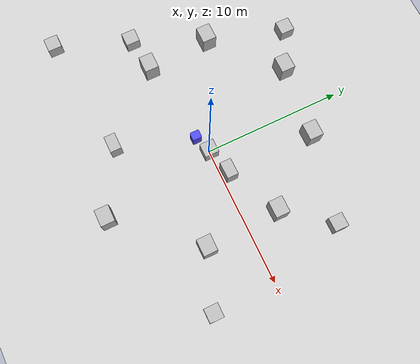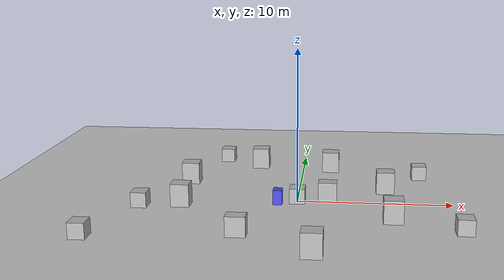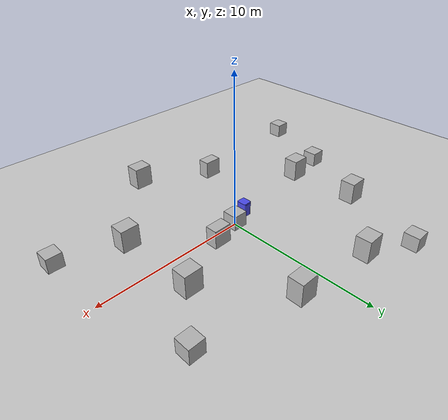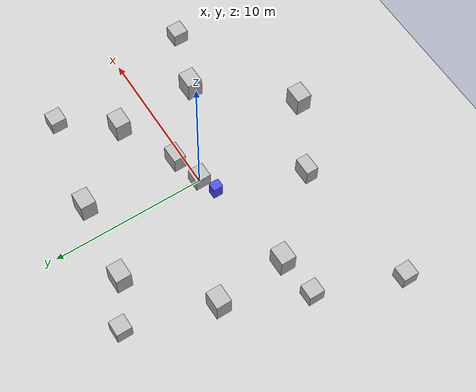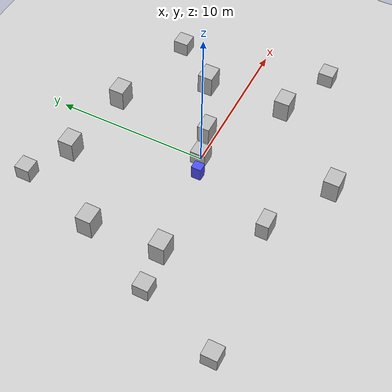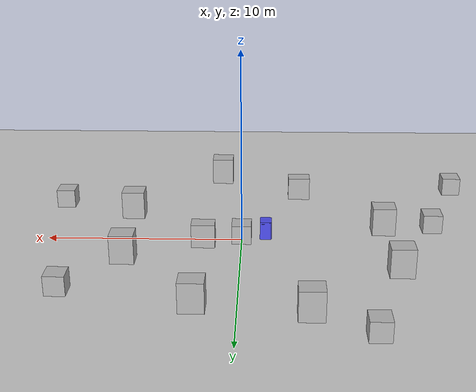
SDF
<sdf version="1.7">
 <world name="default">
  <light name="sun" type="directional">
   <pose>0 0 10 0 -0 0</pose>
   <diffuse>0.8 0.8 0.8 1</diffuse>
   <specular>0.2 0.2 0.2 1</specular>
   <attenuation>
    <range>1000</range>
    <constant>0.9</constant>
    <linear>0.01</linear>
    <quadratic>0.001</quadratic>
   </attenuation>
   <direction>-0.5 0.1 -0.9</direction>
   <spot><inner_angle>0</inner_angle><outer_angle>0</outer_angle><falloff>0</falloff></spot>
  </light>
  <model name="ground_plane">
   <static>1</static>
   <link name="link">
    <collision name="collision">
     <geometry><plane><normal>0 0 1</normal><size>100 100</size></plane></geometry>
     <surface><friction><ode><mu>100</mu><mu2>50</mu2></ode></friction></surface>
    </collision>
    <visual name="visual">
     <cast_shadows>0</cast_shadows>
     <geometry><plane><normal>0 0 1</normal><size>100 100</size></plane></geometry>
     <material>
      <script><uri>file://media/materials/scripts/gazebo.material</uri><name>Gazebo/Grey</name></script>
     </material>
    </visual>
    <kinematic>1</kinematic>
   </link>
  </model>
  <gravity>0 0 -9.8</gravity>
  <magnetic_field>6e-06 2.3e-05 -4.2e-05</magnetic_field>
  <atmosphere type="adiabatic"/>
  <physics type="ode">
   <max_step_size>0.001</max_step_size>
   <real_time_factor>1</real_time_factor>
   <real_time_update_rate>1000</real_time_update_rate>
  </physics>
  <scene><ambient>0.4 0.4 0.4 1</ambient><background>0.7 0.7 0.7 1</background><shadows>1</shadows></scene>
  <spherical_coordinates>
   <surface_model>EARTH_WGS84</surface_model>
   <latitude_deg>0</latitude_deg>
   <longitude_deg>0</longitude_deg>
   <elevation>0</elevation>
   <heading_deg>0</heading_deg>
  </spherical_coordinates>
  <model name="Big box">
   <pose>1.99012 6.88778 0.7495 -0.001246 2e-06 -0.006343</pose>
   <static>0</static>
   <link name="link">
    <inertial>
     <mass>40</mass>
     <inertia><ixx>1</ixx><ixy>0</ixy><ixz>0</ixz><iyy>1</iyy><iyz>0</iyz><izz>1</izz></inertia>
    </inertial>
    <collision name="collision">
     <geometry><box><size>1.2 0.8 1.5</size></box></geometry>
     <surface><contact><ode><max_vel>0.1</max_vel><min_depth>0.001</min_depth></ode></contact></surface>
    </collision>
    <visual name="visual"><geometry><mesh><uri>model://big_box/meshes/big_box.dae</uri></mesh></geometry></visual>
    <kinematic>1</kinematic>
   </link>
  </model>
  <model name="blue_bin_cuboid">
   <link name="link_0">
    <visual name="visual">
     <geometry><mesh><uri>model://blue_bin_cuboid/meshes/blue_bin.stl</uri><scale>1 1 1</scale></mesh></geometry>
     <material>
      <lighting>1</lighting>
      <ambient>0.074 0.074 0.937 1</ambient>
      <diffuse>0.3 0.3 0.937 1</diffuse>
      <specular>0.01 0.01 0.01 1</specular>
      <emissive>0.01 0.01 0.01 1</emissive>
      <shader type="vertex"><normal_map>__default__</normal_map></shader>
     </material>
    </visual>
    <collision name="collision">
     <geometry><mesh><uri>model://blue_bin_cuboid/meshes/blue_bin.stl</uri><scale>1 1 1</scale></mesh></geometry>
    </collision>
    <kinematic>1</kinematic>
   </link>
   <static>1</static>
   <pose>-1.54201 -0.759663 0 0 -0 0</pose>
  </model>
  <model name="box">
   <pose>8.3 5.5 0.5 0 -0 0</pose>
   <link name="link">
    <kinematic>1</kinematic>
    <collision name="collision">
     <geometry><box><size>1 1 1</size></box></geometry>
     <surface><friction><ode><mu>0</mu><mu2>0</mu2></ode></friction></surface>
    </collision>
    <visual name="visual"><geometry><box><size>1 1 1</size></box></geometry></visual>
    <self_collide>1</self_collide>
    <inertial>
     <pose>0 2 0 0 -0 0</pose>
     <inertia><ixx>1</ixx><ixy>0</ixy><ixz>0</ixz><iyy>1</iyy><iyz>0</iyz><izz>1</izz></inertia>
     <mass>1</mass>
    </inertial>
   </link>
   <plugin name="random" filename="libRandomVelocityPlugin.so">
    <link>link</link>
    <initial_velocity>0.5 0 0</initial_velocity>
    <velocity_factor>0.6</velocity_factor>
    <update_period>5</update_period>
    <min_z>0</min_z>
    <max_z>0</max_z>
    <min_y>0</min_y>
    <max_y>0</max_y>
    <min_x>-0.2</min_x>
    <max_x>-0.4</max_x>
   </plugin>
  </model>
  <model name="box2">
   <pose>-10 -1.5 0.5 0 -0 0</pose>
   <link name="link">
    <kinematic>1</kinematic>
    <collision name="collision">
     <geometry><box><size>1 1 1</size></box></geometry>
     <surface><friction><ode><mu>0</mu><mu2>0</mu2></ode></friction></surface>
    </collision>
    <visual name="visual"><geometry><box><size>1 1 1</size></box></geometry></visual>
    <self_collide>1</self_collide>
    <inertial>
     <pose>0 2 0 0 -0 0</pose>
     <inertia><ixx>1</ixx><ixy>0</ixy><ixz>0</ixz><iyy>1</iyy><iyz>0</iyz><izz>1</izz></inertia>
     <mass>1</mass>
    </inertial>
   </link>
   <plugin name="random" filename="libRandomVelocityPlugin.so">
    <link>link</link>
    <initial_velocity>0.5 0 0</initial_velocity>
    <velocity_factor>0.6</velocity_factor>
    <update_period>5</update_period>
    <min_z>0</min_z>
    <max_z>0</max_z>
    <min_y>0</min_y>
    <max_y>0</max_y>
    <min_x>0.2</min_x>
    <max_x>0.4</max_x>
   </plugin>
  </model>
  <model name="box3">
   <pose>10 -4.5 0.5 0 -0 0</pose>
   <link name="link">
    <kinematic>1</kinematic>
    <collision name="collision">
     <geometry><box><size>1 1 1</size></box></geometry>
     <surface><friction><ode><mu>0</mu><mu2>0</mu2></ode></friction></surface>
    </collision>
    <visual name="visual"><geometry><box><size>1 1 1</size></box></geometry></visual>
    <self_collide>1</self_collide>
    <inertial>
     <pose>0 2 0 0 -0 0</pose>
     <inertia><ixx>1</ixx><ixy>0</ixy><ixz>0</ixz><iyy>1</iyy><iyz>0</iyz><izz>1</izz></inertia>
     <mass>1</mass>
    </inertial>
   </link>
   <plugin name="random" filename="libRandomVelocityPlugin.so">
    <link>link</link>
    <initial_velocity>0.5 0 0</initial_velocity>
    <velocity_factor>0.6</velocity_factor>
    <update_period>5</update_period>
    <min_z>0</min_z>
    <max_z>0</max_z>
    <min_y>0</min_y>
    <max_y>0</max_y>
    <min_x>-0.2</min_x>
    <max_x>-0.4</max_x>
   </plugin>
  </model>
  <model name="box4">
   <pose>-12 -6.75 0.5 0 -0 0</pose>
   <link name="link">
    <kinematic>1</kinematic>
    <collision name="collision">
     <geometry><box><size>1 1 1</size></box></geometry>
     <surface><friction><ode><mu>0</mu><mu2>0</mu2></ode></friction></surface>
    </collision>
    <visual name="visual"><geometry><box><size>1 1 1</size></box></geometry></visual>
    <self_collide>1</self_collide>
    <inertial>
     <pose>0 2 0 0 -0 0</pose>
     <inertia><ixx>1</ixx><ixy>0</ixy><ixz>0</ixz><iyy>1</iyy><iyz>0</iyz><izz>1</izz></inertia>
     <mass>1</mass>
    </inertial>
   </link>
   <plugin name="random" filename="libRandomVelocityPlugin.so">
    <link>link</link>
    <initial_velocity>0.5 0 0</initial_velocity>
    <velocity_factor>0.6</velocity_factor>
    <update_period>5</update_period>
    <min_z>0</min_z>
    <max_z>0</max_z>
    <min_y>0</min_y>
    <max_y>0</max_y>
    <min_x>0.2</min_x>
    <max_x>0.3</max_x>
   </plugin>
  </model>
  <model name="box5">
   <pose>-6 9.0 0.5 0 -0 0</pose>
   <link name="link">
    <kinematic>1</kinematic>
    <collision name="collision">
     <geometry><box><size>1 1 1</size></box></geometry>
     <surface><friction><ode><mu>0</mu><mu2>0</mu2></ode></friction></surface>
    </collision>
    <visual name="visual"><geometry><box><size>1 1 1</size></box></geometry></visual>
    <self_collide>1</self_collide>
    <inertial>
     <pose>0 2 0 0 -0 0</pose>
     <inertia><ixx>1</ixx><ixy>0</ixy><ixz>0</ixz><iyy>1</iyy><iyz>0</iyz><izz>1</izz></inertia>
     <mass>1</mass>
    </inertial>
   </link>
   <plugin name="random" filename="libRandomVelocityPlugin.so">
    <link>link</link>
    <initial_velocity>0.5 0 0</initial_velocity>
    <velocity_factor>0.6</velocity_factor>
    <update_period>5</update_period>
    <min_z>0</min_z>
    <max_z>0</max_z>
    <min_y>-0.2</min_y>
    <max_y>-0.4</max_y>
    <min_x>0</min_x>
    <max_x>0</max_x>
   </plugin>
  </model>
  <model name="box6">
   <pose>0 0 0.5 0 -0 0</pose>
   <link name="link">
    <kinematic>1</kinematic>
    <collision name="collision">
     <geometry><box><size>1 1 1</size></box></geometry>
     <surface><friction><ode><mu>0</mu><mu2>0</mu2></ode></friction></surface>
    </collision>
    <visual name="visual"><geometry><box><size>1 1 1</size></box></geometry></visual>
    <self_collide>1</self_collide>
    <inertial>
     <pose>0 2 0 0 -0 0</pose>
     <inertia><ixx>1</ixx><ixy>0</ixy><ixz>0</ixz><iyy>1</iyy><iyz>0</iyz><izz>1</izz></inertia>
     <mass>1</mass>
    </inertial>
   </link>
   <plugin name="random" filename="libRandomVelocityPlugin.so">
    <link>link</link>
    <initial_velocity>0.5 0 0</initial_velocity>
    <velocity_factor>0.6</velocity_factor>
    <update_period>5</update_period>
    <min_z>0</min_z>
    <max_z>0</max_z>
    <min_y>0.2</min_y>
    <max_y>0.5</max_y>
    <min_x>0</min_x>
    <max_x>0</max_x>
   </plugin>
  </model>
  <model name="Big box_0">
   <pose>-7.40687 -1.17355 0.749499 0 -0.000832 -2e-06</pose>
   <static>0</static>
   <link name="link">
    <inertial>
     <mass>40</mass>
     <inertia><ixx>1</ixx><ixy>0</ixy><ixz>0</ixz><iyy>1</iyy><iyz>0</iyz><izz>1</izz></inertia>
    </inertial>
    <collision name="collision">
     <geometry><box><size>1.2 0.8 1.5</size></box></geometry>
     <surface><contact><ode><max_vel>0.1</max_vel><min_depth>0.001</min_depth></ode></contact></surface>
    </collision>
    <visual name="visual"><geometry><mesh><uri>model://big_box/meshes/big_box.dae</uri></mesh></geometry></visual>
    <kinematic>1</kinematic>
   </link>
  </model>
  <model name="Big box 4_0">
   <pose>-3.12253 -5.82703 0.624495 0 0.000826 1e-06</pose>
   <static>0</static>
   <link name="link">
    <inertial>
     <mass>40</mass>
     <inertia><ixx>1</ixx><ixy>0</ixy><ixz>0</ixz><iyy>1</iyy><iyz>0</iyz><izz>1</izz></inertia>
    </inertial>
    <collision name="collision">
     <geometry><box><size>1.2 0.8 1.25</size></box></geometry>
     <surface><contact><ode><max_vel>0.1</max_vel><min_depth>0.001</min_depth></ode></contact></surface>
    </collision>
    <visual name="visual">
     <geometry><mesh><uri>model://big_box4/meshes/big_box.dae</uri></mesh></geometry>
    </visual>
    <kinematic>1</kinematic>
   </link>
  </model>
  <model name="Big box_2">
   <pose>-3.25527 7.48275 0.7495 -0 -0.000834 -1e-06</pose>
   <static>0</static>
   <link name="link">
    <inertial>
     <mass>40</mass>
     <inertia><ixx>1</ixx><ixy>0</ixy><ixz>0</ixz><iyy>1</iyy><iyz>0</iyz><izz>1</izz></inertia>
    </inertial>
    <collision name="collision">
     <geometry><box><size>1.2 0.8 1.5</size></box></geometry>
     <surface><contact><ode><max_vel>0.1</max_vel><min_depth>0.001</min_depth></ode></contact></surface>
    </collision>
    <visual name="visual"><geometry><mesh><uri>model://big_box/meshes/big_box.dae</uri></mesh></geometry></visual>
    <kinematic>1</kinematic>
   </link>
  </model>
  <model name="Big box_3">
   <pose>5.98473 -3.05307 0.749497 0 -0.00083 0</pose>
   <static>0</static>
   <link name="link">
    <inertial>
     <mass>40</mass>
     <inertia><ixx>1</ixx><ixy>0</ixy><ixz>0</ixz><iyy>1</iyy><iyz>0</iyz><izz>1</izz></inertia>
    </inertial>
    <collision name="collision">
     <geometry><box><size>1.2 0.8 1.5</size></box></geometry>
     <surface><contact><ode><max_vel>0.1</max_vel><min_depth>0.001</min_depth></ode></contact></surface>
    </collision>
    <visual name="visual"><geometry><mesh><uri>model://big_box/meshes/big_box.dae</uri></mesh></geometry></visual>
    <kinematic>1</kinematic>
   </link>
  </model>
  <model name="Big box_4">
   <pose>-7.71664 3.471 0.749499 0 -0.000832 -1e-06</pose>
   <static>0</static>
   <link name="link">
    <inertial>
     <mass>40</mass>
     <inertia><ixx>1</ixx><ixy>0</ixy><ixz>0</ixz><iyy>1</iyy><iyz>0</iyz><izz>1</izz></inertia>
    </inertial>
    <collision name="collision">
     <geometry><box><size>1.2 0.8 1.5</size></box></geometry>
     <surface><contact><ode><max_vel>0.1</max_vel><min_depth>0.001</min_depth></ode></contact></surface>
    </collision>
    <visual name="visual"><geometry><mesh><uri>model://big_box/meshes/big_box.dae</uri></mesh></geometry></visual>
    <kinematic>1</kinematic>
   </link>
  </model>
  <model name="Big box_5">
   <pose>5.7655 2.32548 0.749499 0 -0.000832 -1e-06</pose>
   <static>0</static>
   <link name="link">
    <inertial>
     <mass>40</mass>
     <inertia><ixx>1</ixx><ixy>0</ixy><ixz>0</ixz><iyy>1</iyy><iyz>0</iyz><izz>1</izz></inertia>
    </inertial>
    <collision name="collision">
     <geometry><box><size>1.2 0.8 1.5</size></box></geometry>
     <surface><contact><ode><max_vel>0.1</max_vel><min_depth>0.001</min_depth></ode></contact></surface>
    </collision>
    <visual name="visual"><geometry><mesh><uri>model://big_box/meshes/big_box.dae</uri></mesh></geometry></visual>
    <kinematic>1</kinematic>
   </link>
  </model>
  <model name="Big box 4_1">
   <pose>1.93704 0.550406 0.624944 0 8.4e-05 0.013074</pose>
   <static>0</static>
   <link name="link">
    <inertial>
     <mass>40</mass>
     <inertia><ixx>1</ixx><ixy>0</ixy><ixz>0</ixz><iyy>1</iyy><iyz>0</iyz><izz>1</izz></inertia>
    </inertial>
    <collision name="collision">
     <geometry><box><size>1.2 0.8 1.25</size></box></geometry>
     <surface><contact><ode><max_vel>0.1</max_vel><min_depth>0.001</min_depth></ode></contact></surface>
    </collision>
    <visual name="visual">
     <geometry><mesh><uri>model://big_box4/meshes/big_box.dae</uri></mesh></geometry>
    </visual>
    <kinematic>1</kinematic>
   </link>
  </model>
  <model name="Big box_1">
   <pose>1.35057 -8.28272 0.749855 0 -0.000235 0</pose>
   <static>0</static>
   <link name="link">
    <inertial>
     <mass>40</mass>
     <inertia><ixx>1</ixx><ixy>0</ixy><ixz>0</ixz><iyy>1</iyy><iyz>0</iyz><izz>1</izz></inertia>
    </inertial>
    <collision name="collision">
     <geometry><box><size>1.2 0.8 1.5</size></box></geometry>
     <surface><contact><ode><max_vel>0.1</max_vel><min_depth>0.001</min_depth></ode></contact></surface>
    </collision>
    <visual name="visual"><geometry><mesh><uri>model://big_box/meshes/big_box.dae</uri></mesh></geometry></visual>
    <kinematic>1</kinematic>
   </link>
  </model>
 </world>
</sdf>
